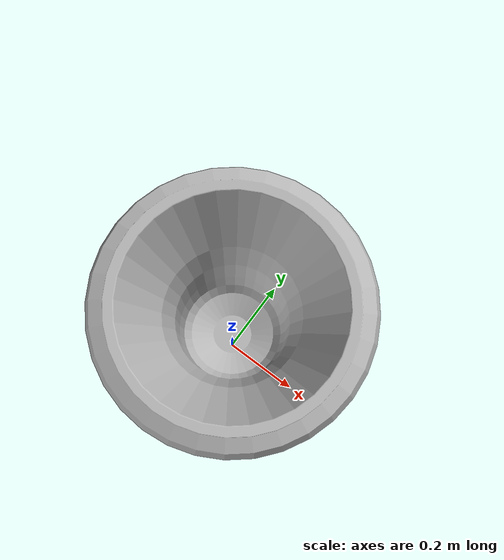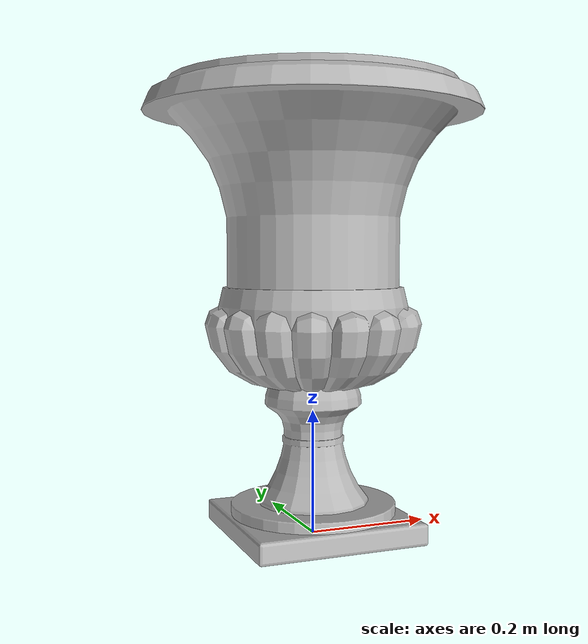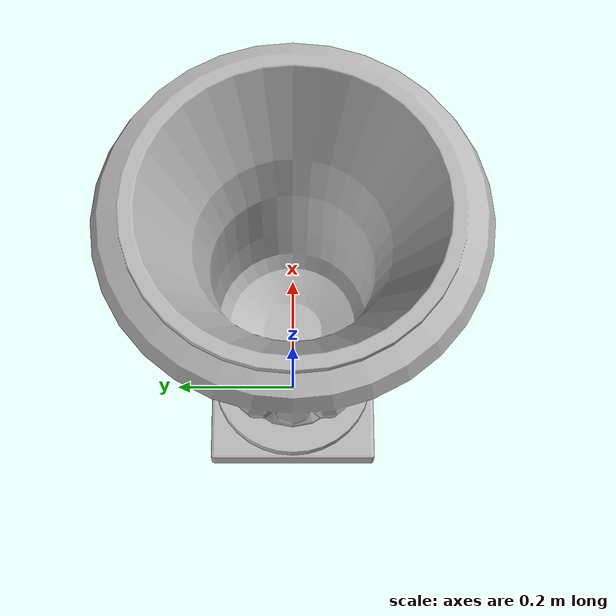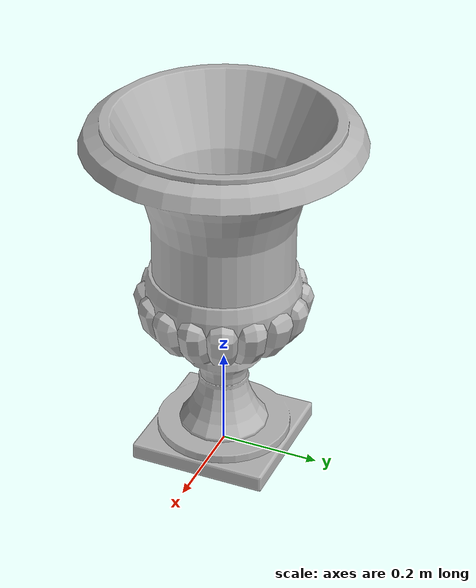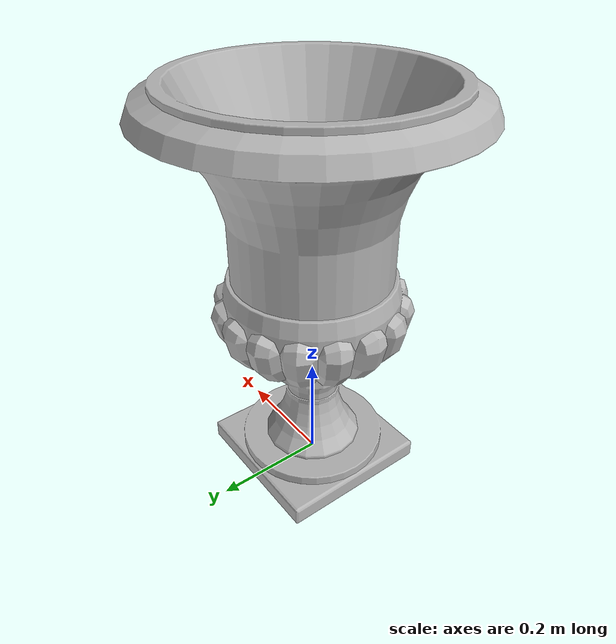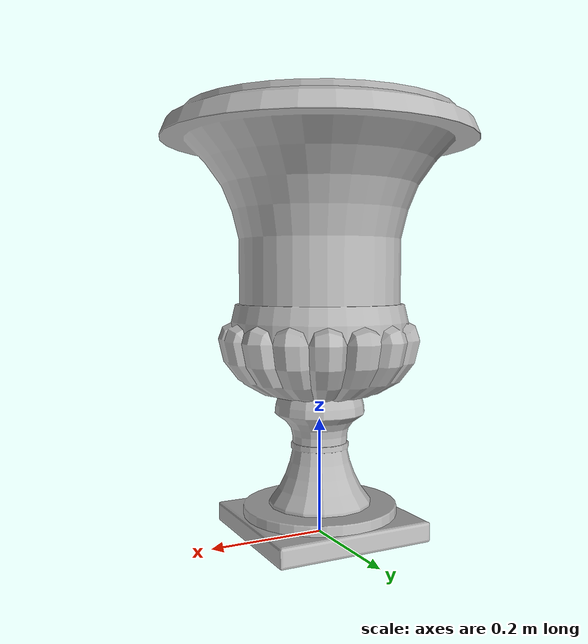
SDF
<?xml version='1.0'?>
<sdf version='1.4'>
  <model name='s__1799'>
    <pose>0 0 0 0 0 0</pose>
    <static>true</static>
    <link name='link'>
      <collision name='collision'>
        <pose>0 0 0 0 0 0</pose>
        <geometry>
          <box>
            <size>0.54 0.54 2</size>
          </box>
        </geometry>
      </collision>
      <visual name='visual'>
        <pose>0 0 0 0 0 0</pose>
        <geometry>
          <mesh><uri>model://s__1799/s__1799.dae</uri></mesh>
        </geometry>
      </visual>
    </link>
  </model>
</sdf>
